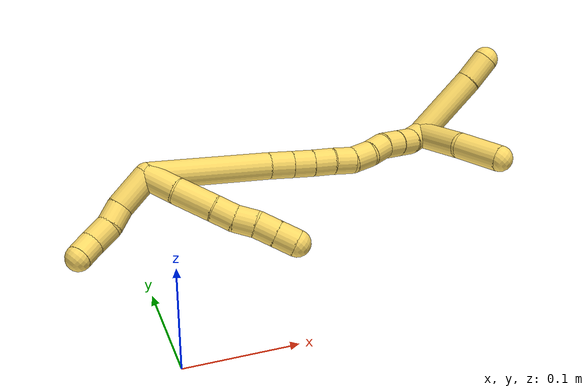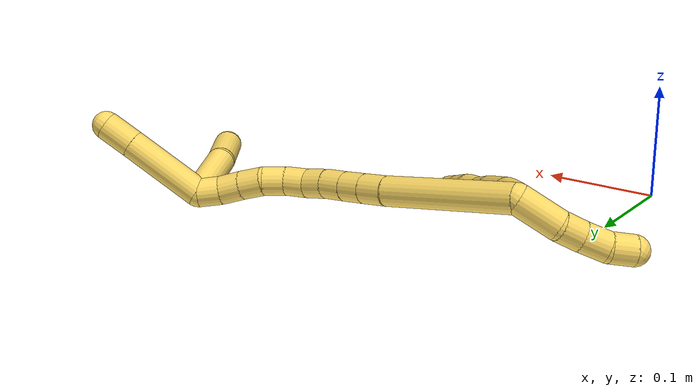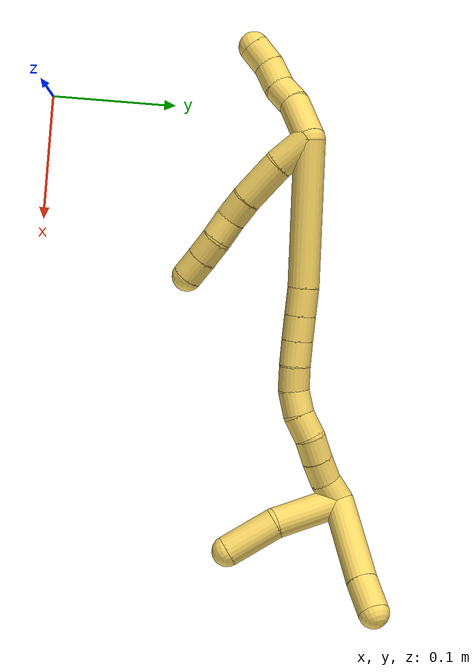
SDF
<sdf version="1.7">
 <world name="default">
  <model name="5">
   <static>0</static>
   <link name="5">
    <collision name="collision-cylinder-e_1_2_8">
     <pose>0.006189 -0.014291 0.002665 1.38645 0.402524 0.335805</pose>
     <geometry><cylinder><radius>0.0125</radius><length>0.031599</length></cylinder></geometry>
     <surface>
      <friction><ode><mu>1.16</mu><mu2>1.16</mu2><slip1>0</slip1><slip2>0</slip2></ode></friction>
      <contact><ode><kp>1e+06</kp><kd>1</kd><max_vel>0</max_vel><min_depth>0.001</min_depth></ode></contact>
     </surface>
    </collision>
    <visual name="visual-cylinder-e_1_2_8">
     <pose>0.006189 -0.014291 0.002665 1.38645 0.402524 0.335805</pose>
     <geometry><cylinder><radius>0.0125</radius><length>0.031599</length></cylinder></geometry>
     <material><ambient>1 0.858824 0.4 1</ambient></material>
    </visual>
    <collision name="collision-cylinder-e_2_8_9">
     <pose>0.022112 -0.04415 0.009476 1.31048 0.543415 0.421837</pose>
     <geometry><cylinder><radius>0.0125</radius><length>0.037647</length></cylinder></geometry>
     <surface>
      <friction><ode><mu>1.16</mu><mu2>1.16</mu2><slip1>0</slip1><slip2>0</slip2></ode></friction>
      <contact><ode><kp>1e+06</kp><kd>1</kd><max_vel>0</max_vel><min_depth>0.001</min_depth></ode></contact>
     </surface>
    </collision>
    <visual name="visual-cylinder-e_2_8_9">
     <pose>0.022112 -0.04415 0.009476 1.31048 0.543415 0.421837</pose>
     <geometry><cylinder><radius>0.0125</radius><length>0.037647</length></cylinder></geometry>
     <material><ambient>1 0.858824 0.4 1</ambient></material>
    </visual>
    <collision name="collision-cylinder-e_3_9_10">
     <pose>0.038144 -0.067604 0.01602 1.27576 0.652626 0.491552</pose>
     <geometry><cylinder><radius>0.0125</radius><length>0.020746</length></cylinder></geometry>
     <surface>
      <friction><ode><mu>1.16</mu><mu2>1.16</mu2><slip1>0</slip1><slip2>0</slip2></ode></friction>
      <contact><ode><kp>1e+06</kp><kd>1</kd><max_vel>0</max_vel><min_depth>0.001</min_depth></ode></contact>
     </surface>
    </collision>
    <visual name="visual-cylinder-e_3_9_10">
     <pose>0.038144 -0.067604 0.01602 1.27576 0.652626 0.491552</pose>
     <geometry><cylinder><radius>0.0125</radius><length>0.020746</length></cylinder></geometry>
     <material><ambient>1 0.858824 0.4 1</ambient></material>
    </visual>
    <collision name="collision-cylinder-e_4_10_11">
     <pose>0.049349 -0.083256 0.022368 1.10013 0.512791 0.318788</pose>
     <geometry><cylinder><radius>0.0125</radius><length>0.020002</length></cylinder></geometry>
     <surface>
      <friction><ode><mu>1.16</mu><mu2>1.16</mu2><slip1>0</slip1><slip2>0</slip2></ode></friction>
      <contact><ode><kp>1e+06</kp><kd>1</kd><max_vel>0</max_vel><min_depth>0.001</min_depth></ode></contact>
     </surface>
    </collision>
    <visual name="visual-cylinder-e_4_10_11">
     <pose>0.049349 -0.083256 0.022368 1.10013 0.512791 0.318788</pose>
     <geometry><cylinder><radius>0.0125</radius><length>0.020002</length></cylinder></geometry>
     <material><ambient>1 0.858824 0.4 1</ambient></material>
    </visual>
    <collision name="collision-cylinder-e_5_11_12">
     <pose>0.060303 -0.098618 0.028728 1.26373 0.649231 0.483034</pose>
     <geometry><cylinder><radius>0.0125</radius><length>0.020004</length></cylinder></geometry>
     <surface>
      <friction><ode><mu>1.16</mu><mu2>1.16</mu2><slip1>0</slip1><slip2>0</slip2></ode></friction>
      <contact><ode><kp>1e+06</kp><kd>1</kd><max_vel>0</max_vel><min_depth>0.001</min_depth></ode></contact>
     </surface>
    </collision>
    <visual name="visual-cylinder-e_5_11_12">
     <pose>0.060303 -0.098618 0.028728 1.26373 0.649231 0.483034</pose>
     <geometry><cylinder><radius>0.0125</radius><length>0.020004</length></cylinder></geometry>
     <material><ambient>1 0.858824 0.4 1</ambient></material>
    </visual>
    <collision name="collision-cylinder-e_6_12_6">
     <pose>0.072179 -0.113991 0.033487 1.27736 0.622267 0.468764</pose>
     <geometry><cylinder><radius>0.0125</radius><length>0.020002</length></cylinder></geometry>
     <surface>
      <friction><ode><mu>1.16</mu><mu2>1.16</mu2><slip1>0</slip1><slip2>0</slip2></ode></friction>
      <contact><ode><kp>1e+06</kp><kd>1</kd><max_vel>0</max_vel><min_depth>0.001</min_depth></ode></contact>
     </surface>
    </collision>
    <visual name="visual-cylinder-e_6_12_6">
     <pose>0.072179 -0.113991 0.033487 1.27736 0.622267 0.468764</pose>
     <geometry><cylinder><radius>0.0125</radius><length>0.020002</length></cylinder></geometry>
     <material><ambient>1 0.858824 0.4 1</ambient></material>
    </visual>
    <collision name="collision-cylinder-e_1_2_13">
     <pose>-0.000197 -6.8e-05 -0.018694 3.13794 -0.010539 -2.47474</pose>
     <geometry><cylinder><radius>0.0125</radius><length>0.037389</length></cylinder></geometry>
     <surface>
      <friction><ode><mu>1.16</mu><mu2>1.16</mu2><slip1>0</slip1><slip2>0</slip2></ode></friction>
      <contact><ode><kp>1e+06</kp><kd>1</kd><max_vel>0</max_vel><min_depth>0.001</min_depth></ode></contact>
     </surface>
    </collision>
    <visual name="visual-cylinder-e_1_2_13">
     <pose>-0.000197 -6.8e-05 -0.018694 3.13794 -0.010539 -2.47474</pose>
     <geometry><cylinder><radius>0.0125</radius><length>0.037389</length></cylinder></geometry>
     <material><ambient>1 0.858824 0.4 1</ambient></material>
    </visual>
    <collision name="collision-cylinder-e_2_13_14">
     <pose>-0.000575 -0.003058 -0.047049 2.84794 -0.017902 -0.120902</pose>
     <geometry><cylinder><radius>0.0125</radius><length>0.020191</length></cylinder></geometry>
     <surface>
      <friction><ode><mu>1.16</mu><mu2>1.16</mu2><slip1>0</slip1><slip2>0</slip2></ode></friction>
      <contact><ode><kp>1e+06</kp><kd>1</kd><max_vel>0</max_vel><min_depth>0.001</min_depth></ode></contact>
     </surface>
    </collision>
    <visual name="visual-cylinder-e_2_13_14">
     <pose>-0.000575 -0.003058 -0.047049 2.84794 -0.017902 -0.120902</pose>
     <geometry><cylinder><radius>0.0125</radius><length>0.020191</length></cylinder></geometry>
     <material><ambient>1 0.858824 0.4 1</ambient></material>
    </visual>
    <collision name="collision-cylinder-e_3_14_15">
     <pose>-0.002764 -0.00681 -0.067624 3.06567 -0.181526 -2.35097</pose>
     <geometry><cylinder><radius>0.0125</radius><length>0.022256</length></cylinder></geometry>
     <surface>
      <friction><ode><mu>1.16</mu><mu2>1.16</mu2><slip1>0</slip1><slip2>0</slip2></ode></friction>
      <contact><ode><kp>1e+06</kp><kd>1</kd><max_vel>0</max_vel><min_depth>0.001</min_depth></ode></contact>
     </surface>
    </collision>
    <visual name="visual-cylinder-e_3_14_15">
     <pose>-0.002764 -0.00681 -0.067624 3.06567 -0.181526 -2.35097</pose>
     <geometry><cylinder><radius>0.0125</radius><length>0.022256</length></cylinder></geometry>
     <material><ambient>1 0.858824 0.4 1</ambient></material>
    </visual>
    <collision name="collision-cylinder-e_4_15_5">
     <pose>-0.008171 -0.010808 -0.087486 2.80129 -0.343688 -1.5809</pose>
     <geometry><cylinder><radius>0.0125</radius><length>0.020164</length></cylinder></geometry>
     <surface>
      <friction><ode><mu>1.16</mu><mu2>1.16</mu2><slip1>0</slip1><slip2>0</slip2></ode></friction>
      <contact><ode><kp>1e+06</kp><kd>1</kd><max_vel>0</max_vel><min_depth>0.001</min_depth></ode></contact>
     </surface>
    </collision>
    <visual name="visual-cylinder-e_4_15_5">
     <pose>-0.008171 -0.010808 -0.087486 2.80129 -0.343688 -1.5809</pose>
     <geometry><cylinder><radius>0.0125</radius><length>0.020164</length></cylinder></geometry>
     <material><ambient>1 0.858824 0.4 1</ambient></material>
    </visual>
    <collision name="collision-cylinder-e_1_2_16">
     <pose>0.036366 -0.019124 0.041637 0.430575 0.670882 0.152174</pose>
     <geometry><cylinder><radius>0.0125</radius><length>0.116992</length></cylinder></geometry>
     <surface>
      <friction><ode><mu>1.16</mu><mu2>1.16</mu2><slip1>0</slip1><slip2>0</slip2></ode></friction>
      <contact><ode><kp>1e+06</kp><kd>1</kd><max_vel>0</max_vel><min_depth>0.001</min_depth></ode></contact>
     </surface>
    </collision>
    <visual name="visual-cylinder-e_1_2_16">
     <pose>0.036366 -0.019124 0.041637 0.430575 0.670882 0.152174</pose>
     <geometry><cylinder><radius>0.0125</radius><length>0.116992</length></cylinder></geometry>
     <material><ambient>1 0.858824 0.4 1</ambient></material>
    </visual>
    <collision name="collision-cylinder-e_2_16_17">
     <pose>0.07944 -0.04275 0.091132 0.520182 0.637509 0.175193</pose>
     <geometry><cylinder><radius>0.0125</radius><length>0.02254</length></cylinder></geometry>
     <surface>
      <friction><ode><mu>1.16</mu><mu2>1.16</mu2><slip1>0</slip1><slip2>0</slip2></ode></friction>
      <contact><ode><kp>1e+06</kp><kd>1</kd><max_vel>0</max_vel><min_depth>0.001</min_depth></ode></contact>
     </surface>
    </collision>
    <visual name="visual-cylinder-e_2_16_17">
     <pose>0.07944 -0.04275 0.091132 0.520182 0.637509 0.175193</pose>
     <geometry><cylinder><radius>0.0125</radius><length>0.02254</length></cylinder></geometry>
     <material><ambient>1 0.858824 0.4 1</ambient></material>
    </visual>
    <collision name="collision-cylinder-e_3_17_18">
     <pose>0.092092 -0.051257 0.106076 0.514494 0.630804 0.17126</pose>
     <geometry><cylinder><radius>0.0125</radius><length>0.020159</length></cylinder></geometry>
     <surface>
      <friction><ode><mu>1.16</mu><mu2>1.16</mu2><slip1>0</slip1><slip2>0</slip2></ode></friction>
      <contact><ode><kp>1e+06</kp><kd>1</kd><max_vel>0</max_vel><min_depth>0.001</min_depth></ode></contact>
     </surface>
    </collision>
    <visual name="visual-cylinder-e_3_17_18">
     <pose>0.092092 -0.051257 0.106076 0.514494 0.630804 0.17126</pose>
     <geometry><cylinder><radius>0.0125</radius><length>0.020159</length></cylinder></geometry>
     <material><ambient>1 0.858824 0.4 1</ambient></material>
    </visual>
    <collision name="collision-cylinder-e_4_18_19">
     <pose>0.10387 -0.059164 0.120485 0.489482 0.612711 0.15767</pose>
     <geometry><cylinder><radius>0.0125</radius><length>0.020285</length></cylinder></geometry>
     <surface>
      <friction><ode><mu>1.16</mu><mu2>1.16</mu2><slip1>0</slip1><slip2>0</slip2></ode></friction>
      <contact><ode><kp>1e+06</kp><kd>1</kd><max_vel>0</max_vel><min_depth>0.001</min_depth></ode></contact>
     </surface>
    </collision>
    <visual name="visual-cylinder-e_4_18_19">
     <pose>0.10387 -0.059164 0.120485 0.489482 0.612711 0.15767</pose>
     <geometry><cylinder><radius>0.0125</radius><length>0.020285</length></cylinder></geometry>
     <material><ambient>1 0.858824 0.4 1</ambient></material>
    </visual>
    <collision name="collision-cylinder-e_5_19_20">
     <pose>0.116176 -0.06634 0.134702 0.443454 0.703409 0.165075</pose>
     <geometry><cylinder><radius>0.0125</radius><length>0.020014</length></cylinder></geometry>
     <surface>
      <friction><ode><mu>1.16</mu><mu2>1.16</mu2><slip1>0</slip1><slip2>0</slip2></ode></friction>
      <contact><ode><kp>1e+06</kp><kd>1</kd><max_vel>0</max_vel><min_depth>0.001</min_depth></ode></contact>
     </surface>
    </collision>
    <visual name="visual-cylinder-e_5_19_20">
     <pose>0.116176 -0.06634 0.134702 0.443454 0.703409 0.165075</pose>
     <geometry><cylinder><radius>0.0125</radius><length>0.020014</length></cylinder></geometry>
     <material><ambient>1 0.858824 0.4 1</ambient></material>
    </visual>
    <collision name="collision-cylinder-e_6_20_21">
     <pose>0.127923 -0.070648 0.150032 0.121884 0.555403 0.034785</pose>
     <geometry><cylinder><radius>0.0125</radius><length>0.020005</length></cylinder></geometry>
     <surface>
      <friction><ode><mu>1.16</mu><mu2>1.16</mu2><slip1>0</slip1><slip2>0</slip2></ode></friction>
      <contact><ode><kp>1e+06</kp><kd>1</kd><max_vel>0</max_vel><min_depth>0.001</min_depth></ode></contact>
     </surface>
    </collision>
    <visual name="visual-cylinder-e_6_20_21">
     <pose>0.127923 -0.070648 0.150032 0.121884 0.555403 0.034785</pose>
     <geometry><cylinder><radius>0.0125</radius><length>0.020005</length></cylinder></geometry>
     <material><ambient>1 0.858824 0.4 1</ambient></material>
    </visual>
    <collision name="collision-cylinder-e_7_21_22">
     <pose>0.138624 -0.070188 0.166734 -0.178732 0.573582 -0.05284</pose>
     <geometry><cylinder><radius>0.0125</radius><length>0.02</length></cylinder></geometry>
     <surface>
      <friction><ode><mu>1.16</mu><mu2>1.16</mu2><slip1>0</slip1><slip2>0</slip2></ode></friction>
      <contact><ode><kp>1e+06</kp><kd>1</kd><max_vel>0</max_vel><min_depth>0.001</min_depth></ode></contact>
     </surface>
    </collision>
    <visual name="visual-cylinder-e_7_21_22">
     <pose>0.138624 -0.070188 0.166734 -0.178732 0.573582 -0.05284</pose>
     <geometry><cylinder><radius>0.0125</radius><length>0.02</length></cylinder></geometry>
     <material><ambient>1 0.858824 0.4 1</ambient></material>
    </visual>
    <collision name="collision-cylinder-e_8_22_23">
     <pose>0.151313 -0.068392 0.181868 -0.043929 0.812841 -0.018909</pose>
     <geometry><cylinder><radius>0.0125</radius><length>0.020002</length></cylinder></geometry>
     <surface>
      <friction><ode><mu>1.16</mu><mu2>1.16</mu2><slip1>0</slip1><slip2>0</slip2></ode></friction>
      <contact><ode><kp>1e+06</kp><kd>1</kd><max_vel>0</max_vel><min_depth>0.001</min_depth></ode></contact>
     </surface>
    </collision>
    <visual name="visual-cylinder-e_8_22_23">
     <pose>0.151313 -0.068392 0.181868 -0.043929 0.812841 -0.018909</pose>
     <geometry><cylinder><radius>0.0125</radius><length>0.020002</length></cylinder></geometry>
     <material><ambient>1 0.858824 0.4 1</ambient></material>
    </visual>
    <collision name="collision-cylinder-e_9_23_24">
     <pose>0.166015 -0.067254 0.195367 -0.12555 0.838843 -0.056039</pose>
     <geometry><cylinder><radius>0.0125</radius><length>0.020001</length></cylinder></geometry>
     <surface>
      <friction><ode><mu>1.16</mu><mu2>1.16</mu2><slip1>0</slip1><slip2>0</slip2></ode></friction>
      <contact><ode><kp>1e+06</kp><kd>1</kd><max_vel>0</max_vel><min_depth>0.001</min_depth></ode></contact>
     </surface>
    </collision>
    <visual name="visual-cylinder-e_9_23_24">
     <pose>0.166015 -0.067254 0.195367 -0.12555 0.838843 -0.056039</pose>
     <geometry><cylinder><radius>0.0125</radius><length>0.020001</length></cylinder></geometry>
     <material><ambient>1 0.858824 0.4 1</ambient></material>
    </visual>
    <collision name="collision-cylinder-e_10_24_1">
     <pose>0.179283 -0.063844 0.209706 -0.322157 0.622273 -0.10441</pose>
     <geometry><cylinder><radius>0.0125</radius><length>0.020001</length></cylinder></geometry>
     <surface>
      <friction><ode><mu>1.16</mu><mu2>1.16</mu2><slip1>0</slip1><slip2>0</slip2></ode></friction>
      <contact><ode><kp>1e+06</kp><kd>1</kd><max_vel>0</max_vel><min_depth>0.001</min_depth></ode></contact>
     </surface>
    </collision>
    <visual name="visual-cylinder-e_10_24_1">
     <pose>0.179283 -0.063844 0.209706 -0.322157 0.622273 -0.10441</pose>
     <geometry><cylinder><radius>0.0125</radius><length>0.020001</length></cylinder></geometry>
     <material><ambient>1 0.858824 0.4 1</ambient></material>
    </visual>
    <collision name="collision-cylinder-e_1_1_25">
     <pose>0.180832 -0.088776 0.219644 1.48988 -0.153871 -0.141941</pose>
     <geometry><cylinder><radius>0.0125</radius><length>0.055851</length></cylinder></geometry>
     <surface>
      <friction><ode><mu>1.16</mu><mu2>1.16</mu2><slip1>0</slip1><slip2>0</slip2></ode></friction>
      <contact><ode><kp>1e+06</kp><kd>1</kd><max_vel>0</max_vel><min_depth>0.001</min_depth></ode></contact>
     </surface>
    </collision>
    <visual name="visual-cylinder-e_1_1_25">
     <pose>0.180832 -0.088776 0.219644 1.48988 -0.153871 -0.141941</pose>
     <geometry><cylinder><radius>0.0125</radius><length>0.055851</length></cylinder></geometry>
     <material><ambient>1 0.858824 0.4 1</ambient></material>
    </visual>
    <collision name="collision-cylinder-e_2_25_4">
     <pose>0.17912 -0.13786 0.225753 1.39299 0.116568 0.09752</pose>
     <geometry><cylinder><radius>0.0125</radius><length>0.044149</length></cylinder></geometry>
     <surface>
      <friction><ode><mu>1.16</mu><mu2>1.16</mu2><slip1>0</slip1><slip2>0</slip2></ode></friction>
      <contact><ode><kp>1e+06</kp><kd>1</kd><max_vel>0</max_vel><min_depth>0.001</min_depth></ode></contact>
     </surface>
    </collision>
    <visual name="visual-cylinder-e_2_25_4">
     <pose>0.17912 -0.13786 0.225753 1.39299 0.116568 0.09752</pose>
     <geometry><cylinder><radius>0.0125</radius><length>0.044149</length></cylinder></geometry>
     <material><ambient>1 0.858824 0.4 1</ambient></material>
    </visual>
    <collision name="collision-cylinder-e_1_1_26">
     <pose>0.184583 -0.064029 0.253305 0.076686 -0.014701 -0.000564</pose>
     <geometry><cylinder><radius>0.0125</radius><length>0.072001</length></cylinder></geometry>
     <surface>
      <friction><ode><mu>1.16</mu><mu2>1.16</mu2><slip1>0</slip1><slip2>0</slip2></ode></friction>
      <contact><ode><kp>1e+06</kp><kd>1</kd><max_vel>0</max_vel><min_depth>0.001</min_depth></ode></contact>
     </surface>
    </collision>
    <visual name="visual-cylinder-e_1_1_26">
     <pose>0.184583 -0.064029 0.253305 0.076686 -0.014701 -0.000564</pose>
     <geometry><cylinder><radius>0.0125</radius><length>0.072001</length></cylinder></geometry>
     <material><ambient>1 0.858824 0.4 1</ambient></material>
    </visual>
    <collision name="collision-cylinder-e_2_26_3">
     <pose>0.183472 -0.066974 0.303182 0.013377 -0.041577 -0.000278</pose>
     <geometry><cylinder><radius>0.0125</radius><length>0.027999</length></cylinder></geometry>
     <surface>
      <friction><ode><mu>1.16</mu><mu2>1.16</mu2><slip1>0</slip1><slip2>0</slip2></ode></friction>
      <contact><ode><kp>1e+06</kp><kd>1</kd><max_vel>0</max_vel><min_depth>0.001</min_depth></ode></contact>
     </surface>
    </collision>
    <visual name="visual-cylinder-e_2_26_3">
     <pose>0.183472 -0.066974 0.303182 0.013377 -0.041577 -0.000278</pose>
     <geometry><cylinder><radius>0.0125</radius><length>0.027999</length></cylinder></geometry>
     <material><ambient>1 0.858824 0.4 1</ambient></material>
    </visual>
    <collision name="collision-sphere-3">
     <pose>0.18289 -0.067161 0.317168 0 -0 0</pose>
     <geometry><sphere><radius>0.0125</radius></sphere></geometry>
     <surface>
      <friction><ode><mu>1.16</mu><mu2>1.16</mu2><slip1>0</slip1><slip2>0</slip2></ode></friction>
      <contact><ode><kp>1e+06</kp><kd>1</kd><max_vel>0</max_vel><min_depth>0.001</min_depth></ode></contact>
     </surface>
    </collision>
    <visual name="visual-sphere-3">
     <pose>0.18289 -0.067161 0.317168 0 -0 0</pose>
     <geometry><sphere><radius>0.0125</radius></sphere></geometry>
     <material><ambient>1 0.858824 0.4 1</ambient></material>
    </visual>
    <collision name="collision-sphere-26">
     <pose>0.184054 -0.066787 0.289196 0 -0 0</pose>
     <geometry><sphere><radius>0.0125</radius></sphere></geometry>
     <surface>
      <friction><ode><mu>1.16</mu><mu2>1.16</mu2><slip1>0</slip1><slip2>0</slip2></ode></friction>
      <contact><ode><kp>1e+06</kp><kd>1</kd><max_vel>0</max_vel><min_depth>0.001</min_depth></ode></contact>
     </surface>
    </collision>
    <visual name="visual-sphere-26">
     <pose>0.184054 -0.066787 0.289196 0 -0 0</pose>
     <geometry><sphere><radius>0.0125</radius></sphere></geometry>
     <material><ambient>1 0.858824 0.4 1</ambient></material>
    </visual>
    <collision name="collision-sphere-4">
     <pose>0.181687 -0.15944 0.229631 0 -0 0</pose>
     <geometry><sphere><radius>0.0125</radius></sphere></geometry>
     <surface>
      <friction><ode><mu>1.16</mu><mu2>1.16</mu2><slip1>0</slip1><slip2>0</slip2></ode></friction>
      <contact><ode><kp>1e+06</kp><kd>1</kd><max_vel>0</max_vel><min_depth>0.001</min_depth></ode></contact>
     </surface>
    </collision>
    <visual name="visual-sphere-4">
     <pose>0.181687 -0.15944 0.229631 0 -0 0</pose>
     <geometry><sphere><radius>0.0125</radius></sphere></geometry>
     <material><ambient>1 0.858824 0.4 1</ambient></material>
    </visual>
    <collision name="collision-sphere-25">
     <pose>0.176552 -0.116281 0.221875 0 -0 0</pose>
     <geometry><sphere><radius>0.0125</radius></sphere></geometry>
     <surface>
      <friction><ode><mu>1.16</mu><mu2>1.16</mu2><slip1>0</slip1><slip2>0</slip2></ode></friction>
      <contact><ode><kp>1e+06</kp><kd>1</kd><max_vel>0</max_vel><min_depth>0.001</min_depth></ode></contact>
     </surface>
    </collision>
    <visual name="visual-sphere-25">
     <pose>0.176552 -0.116281 0.221875 0 -0 0</pose>
     <geometry><sphere><radius>0.0125</radius></sphere></geometry>
     <material><ambient>1 0.858824 0.4 1</ambient></material>
    </visual>
    <collision name="collision-sphere-1">
     <pose>0.185112 -0.061271 0.217414 0 -0 0</pose>
     <geometry><sphere><radius>0.0125</radius></sphere></geometry>
     <surface>
      <friction><ode><mu>1.16</mu><mu2>1.16</mu2><slip1>0</slip1><slip2>0</slip2></ode></friction>
      <contact><ode><kp>1e+06</kp><kd>1</kd><max_vel>0</max_vel><min_depth>0.001</min_depth></ode></contact>
     </surface>
    </collision>
    <visual name="visual-sphere-1">
     <pose>0.185112 -0.061271 0.217414 0 -0 0</pose>
     <geometry><sphere><radius>0.0125</radius></sphere></geometry>
     <material><ambient>1 0.858824 0.4 1</ambient></material>
    </visual>
    <collision name="collision-sphere-24">
     <pose>0.173454 -0.066417 0.201998 0 -0 0</pose>
     <geometry><sphere><radius>0.0125</radius></sphere></geometry>
     <surface>
      <friction><ode><mu>1.16</mu><mu2>1.16</mu2><slip1>0</slip1><slip2>0</slip2></ode></friction>
      <contact><ode><kp>1e+06</kp><kd>1</kd><max_vel>0</max_vel><min_depth>0.001</min_depth></ode></contact>
     </surface>
    </collision>
    <visual name="visual-sphere-24">
     <pose>0.173454 -0.066417 0.201998 0 -0 0</pose>
     <geometry><sphere><radius>0.0125</radius></sphere></geometry>
     <material><ambient>1 0.858824 0.4 1</ambient></material>
    </visual>
    <collision name="collision-sphere-23">
     <pose>0.158576 -0.06809 0.188737 0 -0 0</pose>
     <geometry><sphere><radius>0.0125</radius></sphere></geometry>
     <surface>
      <friction><ode><mu>1.16</mu><mu2>1.16</mu2><slip1>0</slip1><slip2>0</slip2></ode></friction>
      <contact><ode><kp>1e+06</kp><kd>1</kd><max_vel>0</max_vel><min_depth>0.001</min_depth></ode></contact>
     </surface>
    </collision>
    <visual name="visual-sphere-23">
     <pose>0.158576 -0.06809 0.188737 0 -0 0</pose>
     <geometry><sphere><radius>0.0125</radius></sphere></geometry>
     <material><ambient>1 0.858824 0.4 1</ambient></material>
    </visual>
    <collision name="collision-sphere-22">
     <pose>0.14405 -0.068694 0.175 0 -0 0</pose>
     <geometry><sphere><radius>0.0125</radius></sphere></geometry>
     <surface>
      <friction><ode><mu>1.16</mu><mu2>1.16</mu2><slip1>0</slip1><slip2>0</slip2></ode></friction>
      <contact><ode><kp>1e+06</kp><kd>1</kd><max_vel>0</max_vel><min_depth>0.001</min_depth></ode></contact>
     </surface>
    </collision>
    <visual name="visual-sphere-22">
     <pose>0.14405 -0.068694 0.175 0 -0 0</pose>
     <geometry><sphere><radius>0.0125</radius></sphere></geometry>
     <material><ambient>1 0.858824 0.4 1</ambient></material>
    </visual>
    <collision name="collision-sphere-21">
     <pose>0.133197 -0.071681 0.158468 0 -0 0</pose>
     <geometry><sphere><radius>0.0125</radius></sphere></geometry>
     <surface>
      <friction><ode><mu>1.16</mu><mu2>1.16</mu2><slip1>0</slip1><slip2>0</slip2></ode></friction>
      <contact><ode><kp>1e+06</kp><kd>1</kd><max_vel>0</max_vel><min_depth>0.001</min_depth></ode></contact>
     </surface>
    </collision>
    <visual name="visual-sphere-21">
     <pose>0.133197 -0.071681 0.158468 0 -0 0</pose>
     <geometry><sphere><radius>0.0125</radius></sphere></geometry>
     <material><ambient>1 0.858824 0.4 1</ambient></material>
    </visual>
    <collision name="collision-sphere-12">
     <pose>0.06635 -0.106212 0.031136 0 -0 0</pose>
     <geometry><sphere><radius>0.0125</radius></sphere></geometry>
     <surface>
      <friction><ode><mu>1.16</mu><mu2>1.16</mu2><slip1>0</slip1><slip2>0</slip2></ode></friction>
      <contact><ode><kp>1e+06</kp><kd>1</kd><max_vel>0</max_vel><min_depth>0.001</min_depth></ode></contact>
     </surface>
    </collision>
    <visual name="visual-sphere-12">
     <pose>0.06635 -0.106212 0.031136 0 -0 0</pose>
     <geometry><sphere><radius>0.0125</radius></sphere></geometry>
     <material><ambient>1 0.858824 0.4 1</ambient></material>
    </visual>
    <collision name="collision-sphere-11">
     <pose>0.054256 -0.091023 0.02632 0 -0 0</pose>
     <geometry><sphere><radius>0.0125</radius></sphere></geometry>
     <surface>
      <friction><ode><mu>1.16</mu><mu2>1.16</mu2><slip1>0</slip1><slip2>0</slip2></ode></friction>
      <contact><ode><kp>1e+06</kp><kd>1</kd><max_vel>0</max_vel><min_depth>0.001</min_depth></ode></contact>
     </surface>
    </collision>
    <visual name="visual-sphere-11">
     <pose>0.054256 -0.091023 0.02632 0 -0 0</pose>
     <geometry><sphere><radius>0.0125</radius></sphere></geometry>
     <material><ambient>1 0.858824 0.4 1</ambient></material>
    </visual>
    <collision name="collision-sphere-10">
     <pose>0.044443 -0.075489 0.018416 0 -0 0</pose>
     <geometry><sphere><radius>0.0125</radius></sphere></geometry>
     <surface>
      <friction><ode><mu>1.16</mu><mu2>1.16</mu2><slip1>0</slip1><slip2>0</slip2></ode></friction>
      <contact><ode><kp>1e+06</kp><kd>1</kd><max_vel>0</max_vel><min_depth>0.001</min_depth></ode></contact>
     </surface>
    </collision>
    <visual name="visual-sphere-10">
     <pose>0.044443 -0.075489 0.018416 0 -0 0</pose>
     <geometry><sphere><radius>0.0125</radius></sphere></geometry>
     <material><ambient>1 0.858824 0.4 1</ambient></material>
    </visual>
    <collision name="collision-sphere-9">
     <pose>0.031844 -0.059719 0.013623 0 -0 0</pose>
     <geometry><sphere><radius>0.0125</radius></sphere></geometry>
     <surface>
      <friction><ode><mu>1.16</mu><mu2>1.16</mu2><slip1>0</slip1><slip2>0</slip2></ode></friction>
      <contact><ode><kp>1e+06</kp><kd>1</kd><max_vel>0</max_vel><min_depth>0.001</min_depth></ode></contact>
     </surface>
    </collision>
    <visual name="visual-sphere-9">
     <pose>0.031844 -0.059719 0.013623 0 -0 0</pose>
     <geometry><sphere><radius>0.0125</radius></sphere></geometry>
     <material><ambient>1 0.858824 0.4 1</ambient></material>
    </visual>
    <collision name="collision-sphere-2">
     <geometry><sphere><radius>0.0125</radius></sphere></geometry>
     <surface>
      <friction><ode><mu>1.16</mu><mu2>1.16</mu2><slip1>0</slip1><slip2>0</slip2></ode></friction>
      <contact><ode><kp>1e+06</kp><kd>1</kd><max_vel>0</max_vel><min_depth>0.001</min_depth></ode></contact>
     </surface>
    </collision>
    <visual name="visual-sphere-2">
     <geometry><sphere><radius>0.0125</radius></sphere></geometry>
     <material><ambient>1 0.858824 0.4 1</ambient></material>
    </visual>
    <collision name="collision-sphere-19">
     <pose>0.109703 -0.063065 0.127809 0 -0 0</pose>
     <geometry><sphere><radius>0.0125</radius></sphere></geometry>
     <surface>
      <friction><ode><mu>1.16</mu><mu2>1.16</mu2><slip1>0</slip1><slip2>0</slip2></ode></friction>
      <contact><ode><kp>1e+06</kp><kd>1</kd><max_vel>0</max_vel><min_depth>0.001</min_depth></ode></contact>
     </surface>
    </collision>
    <visual name="visual-sphere-19">
     <pose>0.109703 -0.063065 0.127809 0 -0 0</pose>
     <geometry><sphere><radius>0.0125</radius></sphere></geometry>
     <material><ambient>1 0.858824 0.4 1</ambient></material>
    </visual>
    <collision name="collision-sphere-8">
     <pose>0.012379 -0.028581 0.005329 0 -0 0</pose>
     <geometry><sphere><radius>0.0125</radius></sphere></geometry>
     <surface>
      <friction><ode><mu>1.16</mu><mu2>1.16</mu2><slip1>0</slip1><slip2>0</slip2></ode></friction>
      <contact><ode><kp>1e+06</kp><kd>1</kd><max_vel>0</max_vel><min_depth>0.001</min_depth></ode></contact>
     </surface>
    </collision>
    <visual name="visual-sphere-8">
     <pose>0.012379 -0.028581 0.005329 0 -0 0</pose>
     <geometry><sphere><radius>0.0125</radius></sphere></geometry>
     <material><ambient>1 0.858824 0.4 1</ambient></material>
    </visual>
    <collision name="collision-sphere-6">
     <pose>0.078009 -0.12177 0.035837 0 -0 0</pose>
     <geometry><sphere><radius>0.0125</radius></sphere></geometry>
     <surface>
      <friction><ode><mu>1.16</mu><mu2>1.16</mu2><slip1>0</slip1><slip2>0</slip2></ode></friction>
      <contact><ode><kp>1e+06</kp><kd>1</kd><max_vel>0</max_vel><min_depth>0.001</min_depth></ode></contact>
     </surface>
    </collision>
    <visual name="visual-sphere-6">
     <pose>0.078009 -0.12177 0.035837 0 -0 0</pose>
     <geometry><sphere><radius>0.0125</radius></sphere></geometry>
     <material><ambient>1 0.858824 0.4 1</ambient></material>
    </visual>
    <collision name="collision-sphere-13">
     <pose>-0.000394 -0.000136 -0.037387 0 -0 0</pose>
     <geometry><sphere><radius>0.0125</radius></sphere></geometry>
     <surface>
      <friction><ode><mu>1.16</mu><mu2>1.16</mu2><slip1>0</slip1><slip2>0</slip2></ode></friction>
      <contact><ode><kp>1e+06</kp><kd>1</kd><max_vel>0</max_vel><min_depth>0.001</min_depth></ode></contact>
     </surface>
    </collision>
    <visual name="visual-sphere-13">
     <pose>-0.000394 -0.000136 -0.037387 0 -0 0</pose>
     <geometry><sphere><radius>0.0125</radius></sphere></geometry>
     <material><ambient>1 0.858824 0.4 1</ambient></material>
    </visual>
    <collision name="collision-sphere-14">
     <pose>-0.000755 -0.00598 -0.056711 0 -0 0</pose>
     <geometry><sphere><radius>0.0125</radius></sphere></geometry>
     <surface>
      <friction><ode><mu>1.16</mu><mu2>1.16</mu2><slip1>0</slip1><slip2>0</slip2></ode></friction>
      <contact><ode><kp>1e+06</kp><kd>1</kd><max_vel>0</max_vel><min_depth>0.001</min_depth></ode></contact>
     </surface>
    </collision>
    <visual name="visual-sphere-14">
     <pose>-0.000755 -0.00598 -0.056711 0 -0 0</pose>
     <geometry><sphere><radius>0.0125</radius></sphere></geometry>
     <material><ambient>1 0.858824 0.4 1</ambient></material>
    </visual>
    <collision name="collision-sphere-15">
     <pose>-0.004773 -0.00764 -0.078538 0 -0 0</pose>
     <geometry><sphere><radius>0.0125</radius></sphere></geometry>
     <surface>
      <friction><ode><mu>1.16</mu><mu2>1.16</mu2><slip1>0</slip1><slip2>0</slip2></ode></friction>
      <contact><ode><kp>1e+06</kp><kd>1</kd><max_vel>0</max_vel><min_depth>0.001</min_depth></ode></contact>
     </surface>
    </collision>
    <visual name="visual-sphere-15">
     <pose>-0.004773 -0.00764 -0.078538 0 -0 0</pose>
     <geometry><sphere><radius>0.0125</radius></sphere></geometry>
     <material><ambient>1 0.858824 0.4 1</ambient></material>
    </visual>
    <collision name="collision-sphere-5">
     <pose>-0.011568 -0.013977 -0.096434 0 -0 0</pose>
     <geometry><sphere><radius>0.0125</radius></sphere></geometry>
     <surface>
      <friction><ode><mu>1.16</mu><mu2>1.16</mu2><slip1>0</slip1><slip2>0</slip2></ode></friction>
      <contact><ode><kp>1e+06</kp><kd>1</kd><max_vel>0</max_vel><min_depth>0.001</min_depth></ode></contact>
     </surface>
    </collision>
    <visual name="visual-sphere-5">
     <pose>-0.011568 -0.013977 -0.096434 0 -0 0</pose>
     <geometry><sphere><radius>0.0125</radius></sphere></geometry>
     <material><ambient>1 0.858824 0.4 1</ambient></material>
    </visual>
    <collision name="collision-sphere-16">
     <pose>0.072732 -0.038249 0.083273 0 -0 0</pose>
     <geometry><sphere><radius>0.0125</radius></sphere></geometry>
     <surface>
      <friction><ode><mu>1.16</mu><mu2>1.16</mu2><slip1>0</slip1><slip2>0</slip2></ode></friction>
      <contact><ode><kp>1e+06</kp><kd>1</kd><max_vel>0</max_vel><min_depth>0.001</min_depth></ode></contact>
     </surface>
    </collision>
    <visual name="visual-sphere-16">
     <pose>0.072732 -0.038249 0.083273 0 -0 0</pose>
     <geometry><sphere><radius>0.0125</radius></sphere></geometry>
     <material><ambient>1 0.858824 0.4 1</ambient></material>
    </visual>
    <collision name="collision-sphere-17">
     <pose>0.086147 -0.047252 0.09899 0 -0 0</pose>
     <geometry><sphere><radius>0.0125</radius></sphere></geometry>
     <surface>
      <friction><ode><mu>1.16</mu><mu2>1.16</mu2><slip1>0</slip1><slip2>0</slip2></ode></friction>
      <contact><ode><kp>1e+06</kp><kd>1</kd><max_vel>0</max_vel><min_depth>0.001</min_depth></ode></contact>
     </surface>
    </collision>
    <visual name="visual-sphere-17">
     <pose>0.086147 -0.047252 0.09899 0 -0 0</pose>
     <geometry><sphere><radius>0.0125</radius></sphere></geometry>
     <material><ambient>1 0.858824 0.4 1</ambient></material>
    </visual>
    <collision name="collision-sphere-18">
     <pose>0.098037 -0.055263 0.113162 0 -0 0</pose>
     <geometry><sphere><radius>0.0125</radius></sphere></geometry>
     <surface>
      <friction><ode><mu>1.16</mu><mu2>1.16</mu2><slip1>0</slip1><slip2>0</slip2></ode></friction>
      <contact><ode><kp>1e+06</kp><kd>1</kd><max_vel>0</max_vel><min_depth>0.001</min_depth></ode></contact>
     </surface>
    </collision>
    <visual name="visual-sphere-18">
     <pose>0.098037 -0.055263 0.113162 0 -0 0</pose>
     <geometry><sphere><radius>0.0125</radius></sphere></geometry>
     <material><ambient>1 0.858824 0.4 1</ambient></material>
    </visual>
    <collision name="collision-sphere-20">
     <pose>0.122649 -0.069614 0.141596 0 -0 0</pose>
     <geometry><sphere><radius>0.0125</radius></sphere></geometry>
     <surface>
      <friction><ode><mu>1.16</mu><mu2>1.16</mu2><slip1>0</slip1><slip2>0</slip2></ode></friction>
      <contact><ode><kp>1e+06</kp><kd>1</kd><max_vel>0</max_vel><min_depth>0.001</min_depth></ode></contact>
     </surface>
    </collision>
    <visual name="visual-sphere-20">
     <pose>0.122649 -0.069614 0.141596 0 -0 0</pose>
     <geometry><sphere><radius>0.0125</radius></sphere></geometry>
     <material><ambient>1 0.858824 0.4 1</ambient></material>
    </visual>
    <inertial>
     <pose>0.092326 -0.054623 0.10505 0 -0 0</pose>
     <mass>0.75</mass>
     <inertia>
      <ixx>0.000221</ixx>
      <ixy>0</ixy>
      <ixz>0</ixz>
      <iyy>0.000185</iyy>
      <iyz>0</iyz>
      <izz>1.1e-05</izz>
     </inertia>
    </inertial>
   </link>
   <pose>0.024009 0.20831 0.051382 -0.1163 1.01314 0.291589</pose>
  </model>
 </world>
</sdf>
